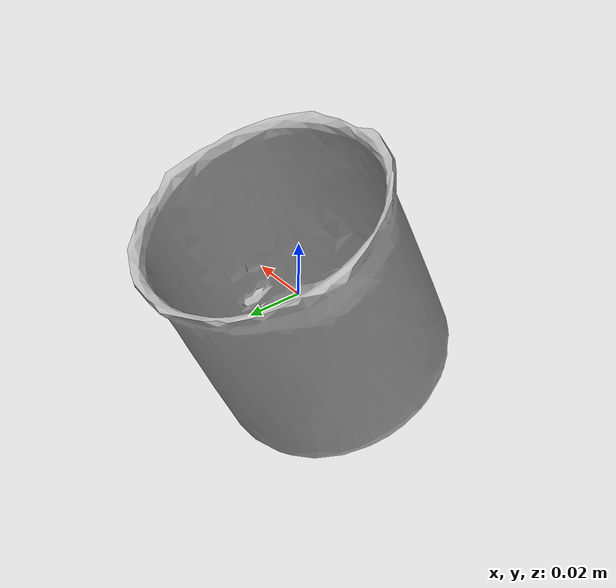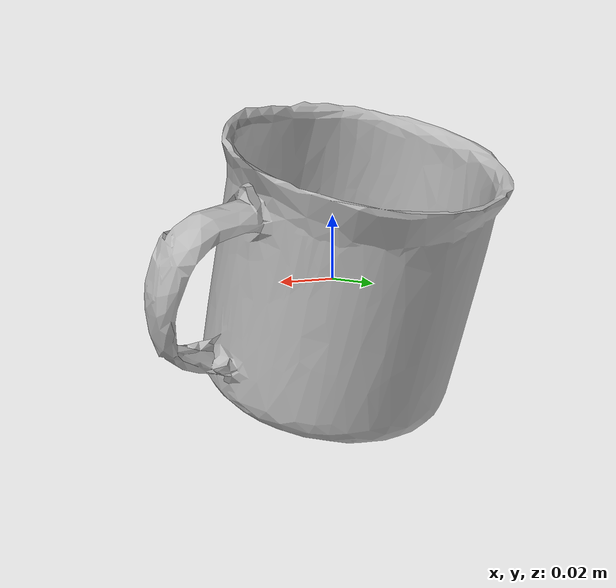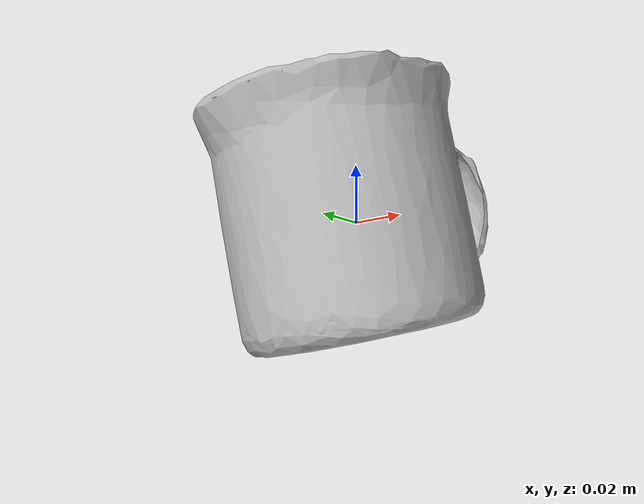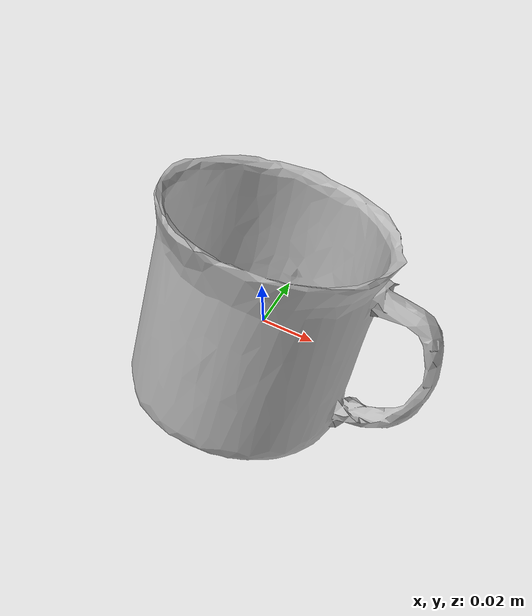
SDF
<?xml version='1.0'?>
<sdf version='1.6'>
	<model name='b_red_mug'>
		<static>false</static>
		<pose>0 0 0 0 0 0</pose>

		<link name='link'>
			<inertial>
			<mass>0.096</mass>
			<pose>-0.00011045 0.0017861 0.0028209 0 0 0</pose>
				<inertia>
					<ixx>1.66e-06</ixx>
					<ixy>0</ixy>
					<ixz>0</ixz>
					<iyy>1.357e-06</iyy>
					<iyz>0</iyz>
					<izz>7.1669e-07</izz>
				</inertia>
			</inertial>
			<collision name='collision'>
				<geometry>
					<mesh>
						<uri>model://b_red_mug/b_red_mug.dae</uri>
					</mesh>
				</geometry>
				<surface>
					<friction>
						<ode>
							<mu>0.2</mu>
							<mu2>0.2</mu2>
						</ode>
					</friction>
				</surface>
			</collision>
			<visual name='visual'>
				<geometry>
					<mesh>
						<uri>model://b_red_mug/b_red_mug.dae</uri>
					</mesh>
				</geometry>
			</visual>
		</link>
	</model>
</sdf>
